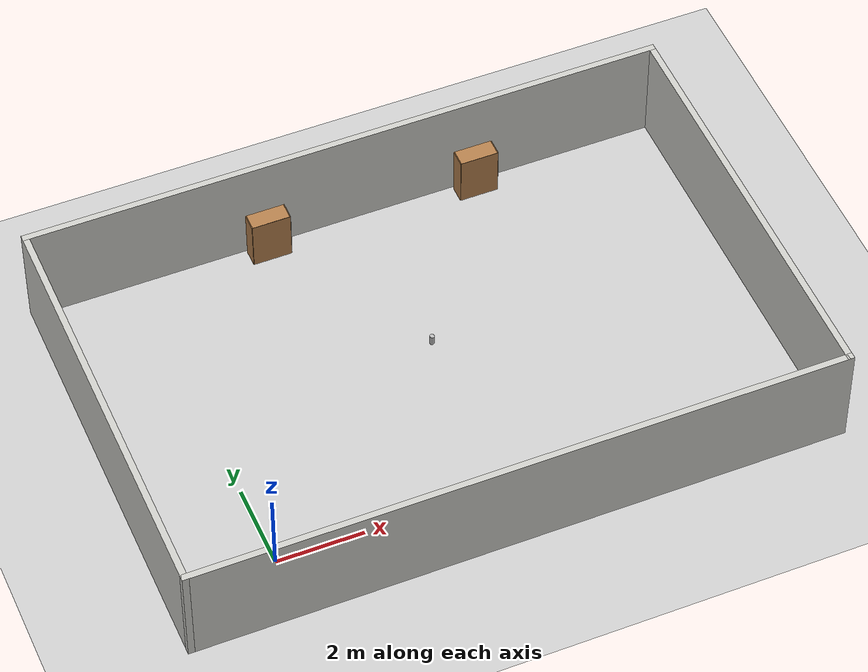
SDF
<sdf version="1.6">
 <world name="default">
  <plugin name="ros_link_attacher_plugin" filename="libgazebo_ros_link_attacher.so"/>
  <light name="sun" type="directional">
   <pose>0 0 10 0 -0 0</pose>
   <diffuse>0.8 0.8 0.8 1</diffuse>
   <specular>0.1 0.1 0.1 1</specular>
   <attenuation>
    <range>1000</range>
    <constant>0.9</constant>
    <linear>0.01</linear>
    <quadratic>0.001</quadratic>
   </attenuation>
   <direction>-0.5 0.5 -1</direction>
  </light>
  <model name="ground_plane">
   <static>1</static>
   <link name="link">
    <collision name="collision">
     <geometry><plane><normal>0 0 1</normal><size>100 100</size></plane></geometry>
     <surface><friction><ode><mu>100</mu><mu2>50</mu2></ode></friction></surface>
    </collision>
    <visual name="visual">
     <cast_shadows>0</cast_shadows>
     <geometry><plane><normal>0 0 1</normal><size>100 100</size></plane></geometry>
     <material>
      <script><uri>file://media/materials/scripts/gazebo.material</uri><name>Gazebo/Grey</name></script>
     </material>
    </visual>
   </link>
  </model>
  <gravity>0 0 -9.8</gravity>
  <magnetic_field>6e-06 2.3e-05 -4.2e-05</magnetic_field>
  <atmosphere type="adiabatic"/>
  <physics name="default_physics" default="0" type="ode">
   <max_step_size>0.001</max_step_size>
   <real_time_factor>1</real_time_factor>
   <real_time_update_rate>1000</real_time_update_rate>
  </physics>
  <scene><ambient>0.4 0.4 0.4 1</ambient><background>0.7 0.7 0.7 1</background><shadows>1</shadows></scene>
  <spherical_coordinates>
   <surface_model>EARTH_WGS84</surface_model>
   <latitude_deg>0</latitude_deg>
   <longitude_deg>0</longitude_deg>
   <elevation>0</elevation>
   <heading_deg>0</heading_deg>
  </spherical_coordinates>
  <model name="zh_scene">
   <pose>5 3.5 0 0 -0 0</pose>
   <link name="Wall_1">
    <collision name="Wall_1_Collision">
     <geometry><box><size>15 0.15 2.5</size></box></geometry>
     <pose>0 0 1.25 0 -0 0</pose>
    </collision>
    <visual name="Wall_1_Visual">
     <pose>0 0 1.25 0 -0 0</pose>
     <geometry><box><size>15 0.15 2.5</size></box></geometry>
     <material>
      <script><uri>file://media/materials/scripts/gazebo.material</uri><name>Gazebo/CeilingTiled</name></script>
      <ambient>1 1 1 1</ambient>
     </material>
    </visual>
    <pose>0 4.925 0 0 -0 0</pose>
   </link>
   <link name="Wall_2">
    <collision name="Wall_2_Collision">
     <geometry><box><size>10 0.15 2.5</size></box></geometry>
     <pose>0 0 1.25 0 -0 0</pose>
    </collision>
    <visual name="Wall_2_Visual">
     <pose>0 0 1.25 0 -0 0</pose>
     <geometry><box><size>10 0.15 2.5</size></box></geometry>
     <material>
      <script><uri>file://media/materials/scripts/gazebo.material</uri><name>Gazebo/CeilingTiled</name></script>
      <ambient>1 1 1 1</ambient>
     </material>
    </visual>
    <pose>7.425 0 0 0 0 -1.5708</pose>
   </link>
   <link name="Wall_3">
    <collision name="Wall_3_Collision">
     <geometry><box><size>15 0.15 2.5</size></box></geometry>
     <pose>0 0 1.25 0 -0 0</pose>
    </collision>
    <visual name="Wall_3_Visual">
     <pose>0 0 1.25 0 -0 0</pose>
     <geometry><box><size>15 0.15 2.5</size></box></geometry>
     <material>
      <script><uri>file://media/materials/scripts/gazebo.material</uri><name>Gazebo/CeilingTiled</name></script>
      <ambient>1 1 1 1</ambient>
     </material>
    </visual>
    <pose>0 -4.925 0 0 -0 3.14159</pose>
   </link>
   <link name="Wall_4">
    <collision name="Wall_4_Collision">
     <geometry><box><size>10 0.15 2.5</size></box></geometry>
     <pose>0 0 1.25 0 -0 0</pose>
    </collision>
    <visual name="Wall_4_Visual">
     <pose>0 0 1.25 0 -0 0</pose>
     <geometry><box><size>10 0.15 2.5</size></box></geometry>
     <material>
      <script><uri>file://media/materials/scripts/gazebo.material</uri><name>Gazebo/CeilingTiled</name></script>
      <ambient>1 1 1 1</ambient>
     </material>
    </visual>
    <pose>-7.425 0 0 0 -0 1.5708</pose>
   </link>
   <static>1</static>
  </model>
  <model name="beer">
   <link name="link">
    <pose>0 0 0.115 0 -0 0</pose>
    <inertial>
     <mass>0.39</mass>
     <inertia><ixx>0.00058</ixx><ixy>0</ixy><ixz>0</ixz><iyy>0.00058</iyy><iyz>0</iyz><izz>0.00019</izz></inertia>
    </inertial>
    <collision name="collision">
     <geometry><cylinder><radius>0.055</radius><length>0.23</length></cylinder></geometry>
    </collision>
    <visual name="visual">
     <geometry><cylinder><radius>0.055</radius><length>0.23</length></cylinder></geometry>
     <material>
      <script>
       <uri>model://beer/materials/scripts</uri>
       <uri>model://beer/materials/textures</uri>
       <name>Beer/Diffuse</name>
      </script>
     </material>
    </visual>
   </link>
   <pose>4.99999 3.5001 0.964752 -1e-06 1e-06 -0.010162</pose>
  </model>
  <model name="bookshelf">
   <static>1</static>
   <link name="link">
    <inertial><mass>1</mass></inertial>
    <collision name="back">
     <pose>0 0.005 0.6 0 -0 0</pose>
     <geometry><box><size>0.9 0.01 1.2</size></box></geometry>
    </collision>
    <visual name="visual1">
     <pose>0 0.005 0.6 0 -0 0</pose>
     <geometry><box><size>0.9 0.01 1.2</size></box></geometry>
     <material>
      <script><uri>file://media/materials/scripts/gazebo.material</uri><name>Gazebo/Wood</name></script>
     </material>
    </visual>
    <collision name="left_side">
     <pose>0.45 -0.195 0.6 0 -0 0</pose>
     <geometry><box><size>0.02 0.4 1.2</size></box></geometry>
    </collision>
    <visual name="visual2">
     <pose>0.45 -0.195 0.6 0 -0 0</pose>
     <geometry><box><size>0.02 0.4 1.2</size></box></geometry>
     <material>
      <script><uri>file://media/materials/scripts/gazebo.material</uri><name>Gazebo/Wood</name></script>
     </material>
    </visual>
    <collision name="right_side">
     <pose>-0.45 -0.195 0.6 0 -0 0</pose>
     <geometry><box><size>0.02 0.4 1.2</size></box></geometry>
    </collision>
    <visual name="visual3">
     <pose>-0.45 -0.195 0.6 0 -0 0</pose>
     <geometry><box><size>0.02 0.4 1.2</size></box></geometry>
     <material>
      <script><uri>file://media/materials/scripts/gazebo.material</uri><name>Gazebo/Wood</name></script>
     </material>
    </visual>
    <collision name="bottom">
     <pose>0 -0.195 0.03 0 -0 0</pose>
     <geometry><box><size>0.88 0.4 0.06</size></box></geometry>
    </collision>
    <visual name="visual4">
     <pose>0 -0.195 0.03 0 -0 0</pose>
     <geometry><box><size>0.88 0.4 0.06</size></box></geometry>
     <material>
      <script><uri>file://media/materials/scripts/gazebo.material</uri><name>Gazebo/Wood</name></script>
     </material>
    </visual>
    <collision name="top">
     <pose>0 -0.195 1.19 0 -0 0</pose>
     <geometry><box><size>0.88 0.4 0.02</size></box></geometry>
    </collision>
    <visual name="visual5">
     <pose>0 -0.195 1.19 0 -0 0</pose>
     <geometry><box><size>0.88 0.4 0.02</size></box></geometry>
     <material>
      <script><uri>file://media/materials/scripts/gazebo.material</uri><name>Gazebo/Wood</name></script>
     </material>
    </visual>
    <collision name="low_shelf">
     <pose>0 -0.195 0.43 0 -0 0</pose>
     <geometry><box><size>0.88 0.4 0.02</size></box></geometry>
    </collision>
    <visual name="visual6">
     <pose>0 -0.195 0.43 0 -0 0</pose>
     <geometry><box><size>0.88 0.4 0.02</size></box></geometry>
     <material>
      <script><uri>file://media/materials/scripts/gazebo.material</uri><name>Gazebo/Wood</name></script>
     </material>
    </visual>
    <collision name="high_shelf">
     <pose>0 -0.195 0.8 0 -0 0</pose>
     <geometry><box><size>0.88 0.4 0.02</size></box></geometry>
    </collision>
    <visual name="visual7">
     <pose>0 -0.195 0.8 0 -0 0</pose>
     <geometry><box><size>0.88 0.4 0.02</size></box></geometry>
     <material>
      <script><uri>file://media/materials/scripts/gazebo.material</uri><name>Gazebo/Wood</name></script>
     </material>
    </visual>
   </link>
   <pose>8 -0.9 0 0 -0 0</pose>
  </model>
  <model name="bookshelf_clone">
   <static>1</static>
   <link name="link">
    <inertial><mass>1</mass></inertial>
    <collision name="back">
     <pose>0 0.005 0.6 0 -0 0</pose>
     <geometry><box><size>0.9 0.01 1.2</size></box></geometry>
    </collision>
    <visual name="visual1">
     <pose>0 0.005 0.6 0 -0 0</pose>
     <geometry><box><size>0.9 0.01 1.2</size></box></geometry>
     <material>
      <script><uri>file://media/materials/scripts/gazebo.material</uri><name>Gazebo/Wood</name></script>
     </material>
    </visual>
    <collision name="left_side">
     <pose>0.45 -0.195 0.6 0 -0 0</pose>
     <geometry><box><size>0.02 0.4 1.2</size></box></geometry>
    </collision>
    <visual name="visual2">
     <pose>0.45 -0.195 0.6 0 -0 0</pose>
     <geometry><box><size>0.02 0.4 1.2</size></box></geometry>
     <material>
      <script><uri>file://media/materials/scripts/gazebo.material</uri><name>Gazebo/Wood</name></script>
     </material>
    </visual>
    <collision name="right_side">
     <pose>-0.45 -0.195 0.6 0 -0 0</pose>
     <geometry><box><size>0.02 0.4 1.2</size></box></geometry>
    </collision>
    <visual name="visual3">
     <pose>-0.45 -0.195 0.6 0 -0 0</pose>
     <geometry><box><size>0.02 0.4 1.2</size></box></geometry>
     <material>
      <script><uri>file://media/materials/scripts/gazebo.material</uri><name>Gazebo/Wood</name></script>
     </material>
    </visual>
    <collision name="bottom">
     <pose>0 -0.195 0.03 0 -0 0</pose>
     <geometry><box><size>0.88 0.4 0.06</size></box></geometry>
    </collision>
    <visual name="visual4">
     <pose>0 -0.195 0.03 0 -0 0</pose>
     <geometry><box><size>0.88 0.4 0.06</size></box></geometry>
     <material>
      <script><uri>file://media/materials/scripts/gazebo.material</uri><name>Gazebo/Wood</name></script>
     </material>
    </visual>
    <collision name="top">
     <pose>0 -0.195 1.19 0 -0 0</pose>
     <geometry><box><size>0.88 0.4 0.02</size></box></geometry>
    </collision>
    <visual name="visual5">
     <pose>0 -0.195 1.19 0 -0 0</pose>
     <geometry><box><size>0.88 0.4 0.02</size></box></geometry>
     <material>
      <script><uri>file://media/materials/scripts/gazebo.material</uri><name>Gazebo/Wood</name></script>
     </material>
    </visual>
    <collision name="low_shelf">
     <pose>0 -0.195 0.43 0 -0 0</pose>
     <geometry><box><size>0.88 0.4 0.02</size></box></geometry>
    </collision>
    <visual name="visual6">
     <pose>0 -0.195 0.43 0 -0 0</pose>
     <geometry><box><size>0.88 0.4 0.02</size></box></geometry>
     <material>
      <script><uri>file://media/materials/scripts/gazebo.material</uri><name>Gazebo/Wood</name></script>
     </material>
    </visual>
    <collision name="high_shelf">
     <pose>0 -0.195 0.8 0 -0 0</pose>
     <geometry><box><size>0.88 0.4 0.02</size></box></geometry>
    </collision>
    <visual name="visual7">
     <pose>0 -0.195 0.8 0 -0 0</pose>
     <geometry><box><size>0.88 0.4 0.02</size></box></geometry>
     <material>
      <script><uri>file://media/materials/scripts/gazebo.material</uri><name>Gazebo/Wood</name></script>
     </material>
    </visual>
   </link>
   <pose>3 -0.9 0 0 -0 0</pose>
  </model>
  <model name="bookshelf_clone_0">
   <static>1</static>
   <link name="link">
    <inertial><mass>1</mass></inertial>
    <collision name="back">
     <pose>0 0.005 0.6 0 -0 0</pose>
     <geometry><box><size>0.9 0.01 1.2</size></box></geometry>
    </collision>
    <visual name="visual1">
     <pose>0 0.005 0.6 0 -0 0</pose>
     <geometry><box><size>0.9 0.01 1.2</size></box></geometry>
     <material>
      <script><uri>file://media/materials/scripts/gazebo.material</uri><name>Gazebo/Wood</name></script>
     </material>
    </visual>
    <collision name="left_side">
     <pose>0.45 -0.195 0.6 0 -0 0</pose>
     <geometry><box><size>0.02 0.4 1.2</size></box></geometry>
    </collision>
    <visual name="visual2">
     <pose>0.45 -0.195 0.6 0 -0 0</pose>
     <geometry><box><size>0.02 0.4 1.2</size></box></geometry>
     <material>
      <script><uri>file://media/materials/scripts/gazebo.material</uri><name>Gazebo/Wood</name></script>
     </material>
    </visual>
    <collision name="right_side">
     <pose>-0.45 -0.195 0.6 0 -0 0</pose>
     <geometry><box><size>0.02 0.4 1.2</size></box></geometry>
    </collision>
    <visual name="visual3">
     <pose>-0.45 -0.195 0.6 0 -0 0</pose>
     <geometry><box><size>0.02 0.4 1.2</size></box></geometry>
     <material>
      <script><uri>file://media/materials/scripts/gazebo.material</uri><name>Gazebo/Wood</name></script>
     </material>
    </visual>
    <collision name="bottom">
     <pose>0 -0.195 0.03 0 -0 0</pose>
     <geometry><box><size>0.88 0.4 0.06</size></box></geometry>
    </collision>
    <visual name="visual4">
     <pose>0 -0.195 0.03 0 -0 0</pose>
     <geometry><box><size>0.88 0.4 0.06</size></box></geometry>
     <material>
      <script><uri>file://media/materials/scripts/gazebo.material</uri><name>Gazebo/Wood</name></script>
     </material>
    </visual>
    <collision name="top">
     <pose>0 -0.195 1.19 0 -0 0</pose>
     <geometry><box><size>0.88 0.4 0.02</size></box></geometry>
    </collision>
    <visual name="visual5">
     <pose>0 -0.195 1.19 0 -0 0</pose>
     <geometry><box><size>0.88 0.4 0.02</size></box></geometry>
     <material>
      <script><uri>file://media/materials/scripts/gazebo.material</uri><name>Gazebo/Wood</name></script>
     </material>
    </visual>
    <collision name="low_shelf">
     <pose>0 -0.195 0.43 0 -0 0</pose>
     <geometry><box><size>0.88 0.4 0.02</size></box></geometry>
    </collision>
    <visual name="visual6">
     <pose>0 -0.195 0.43 0 -0 0</pose>
     <geometry><box><size>0.88 0.4 0.02</size></box></geometry>
     <material>
      <script><uri>file://media/materials/scripts/gazebo.material</uri><name>Gazebo/Wood</name></script>
     </material>
    </visual>
    <collision name="high_shelf">
     <pose>0 -0.195 0.8 0 -0 0</pose>
     <geometry><box><size>0.88 0.4 0.02</size></box></geometry>
    </collision>
    <visual name="visual7">
     <pose>0 -0.195 0.8 0 -0 0</pose>
     <geometry><box><size>0.88 0.4 0.02</size></box></geometry>
     <material>
      <script><uri>file://media/materials/scripts/gazebo.material</uri><name>Gazebo/Wood</name></script>
     </material>
    </visual>
   </link>
   <pose>3 7.9 0 0 -0 3.14159</pose>
  </model>
  <model name="bookshelf_clone_1">
   <static>1</static>
   <link name="link">
    <inertial><mass>1</mass></inertial>
    <collision name="back">
     <pose>0 0.005 0.6 0 -0 0</pose>
     <geometry><box><size>0.9 0.01 1.2</size></box></geometry>
    </collision>
    <visual name="visual1">
     <pose>0 0.005 0.6 0 -0 0</pose>
     <geometry><box><size>0.9 0.01 1.2</size></box></geometry>
     <material>
      <script><uri>file://media/materials/scripts/gazebo.material</uri><name>Gazebo/Wood</name></script>
     </material>
    </visual>
    <collision name="left_side">
     <pose>0.45 -0.195 0.6 0 -0 0</pose>
     <geometry><box><size>0.02 0.4 1.2</size></box></geometry>
    </collision>
    <visual name="visual2">
     <pose>0.45 -0.195 0.6 0 -0 0</pose>
     <geometry><box><size>0.02 0.4 1.2</size></box></geometry>
     <material>
      <script><uri>file://media/materials/scripts/gazebo.material</uri><name>Gazebo/Wood</name></script>
     </material>
    </visual>
    <collision name="right_side">
     <pose>-0.45 -0.195 0.6 0 -0 0</pose>
     <geometry><box><size>0.02 0.4 1.2</size></box></geometry>
    </collision>
    <visual name="visual3">
     <pose>-0.45 -0.195 0.6 0 -0 0</pose>
     <geometry><box><size>0.02 0.4 1.2</size></box></geometry>
     <material>
      <script><uri>file://media/materials/scripts/gazebo.material</uri><name>Gazebo/Wood</name></script>
     </material>
    </visual>
    <collision name="bottom">
     <pose>0 -0.195 0.03 0 -0 0</pose>
     <geometry><box><size>0.88 0.4 0.06</size></box></geometry>
    </collision>
    <visual name="visual4">
     <pose>0 -0.195 0.03 0 -0 0</pose>
     <geometry><box><size>0.88 0.4 0.06</size></box></geometry>
     <material>
      <script><uri>file://media/materials/scripts/gazebo.material</uri><name>Gazebo/Wood</name></script>
     </material>
    </visual>
    <collision name="top">
     <pose>0 -0.195 1.19 0 -0 0</pose>
     <geometry><box><size>0.88 0.4 0.02</size></box></geometry>
    </collision>
    <visual name="visual5">
     <pose>0 -0.195 1.19 0 -0 0</pose>
     <geometry><box><size>0.88 0.4 0.02</size></box></geometry>
     <material>
      <script><uri>file://media/materials/scripts/gazebo.material</uri><name>Gazebo/Wood</name></script>
     </material>
    </visual>
    <collision name="low_shelf">
     <pose>0 -0.195 0.43 0 -0 0</pose>
     <geometry><box><size>0.88 0.4 0.02</size></box></geometry>
    </collision>
    <visual name="visual6">
     <pose>0 -0.195 0.43 0 -0 0</pose>
     <geometry><box><size>0.88 0.4 0.02</size></box></geometry>
     <material>
      <script><uri>file://media/materials/scripts/gazebo.material</uri><name>Gazebo/Wood</name></script>
     </material>
    </visual>
    <collision name="high_shelf">
     <pose>0 -0.195 0.8 0 -0 0</pose>
     <geometry><box><size>0.88 0.4 0.02</size></box></geometry>
    </collision>
    <visual name="visual7">
     <pose>0 -0.195 0.8 0 -0 0</pose>
     <geometry><box><size>0.88 0.4 0.02</size></box></geometry>
     <material>
      <script><uri>file://media/materials/scripts/gazebo.material</uri><name>Gazebo/Wood</name></script>
     </material>
    </visual>
   </link>
   <pose>8 7.9 0 0 -0 3.14159</pose>
  </model>
 </world>
</sdf>
